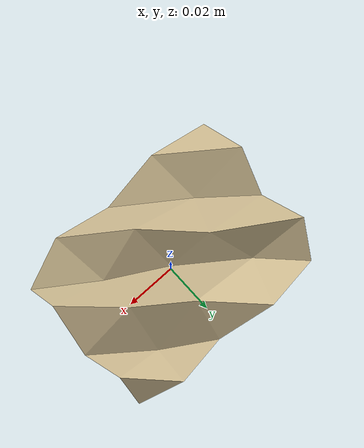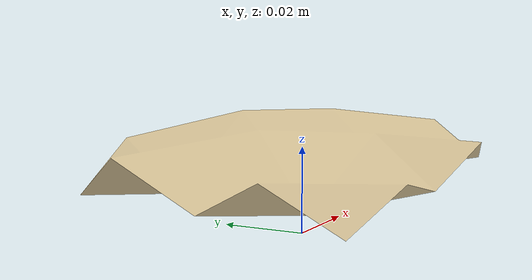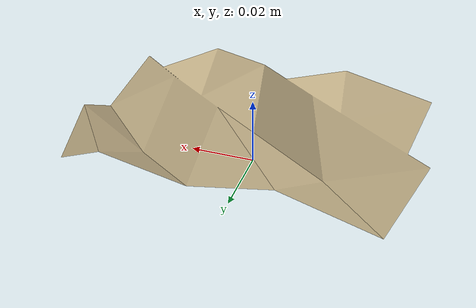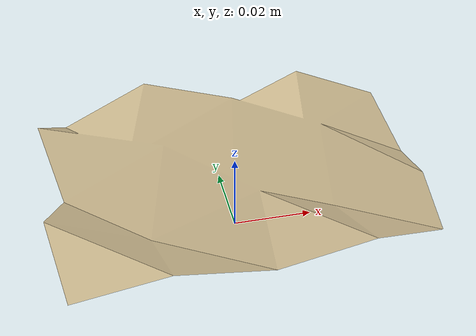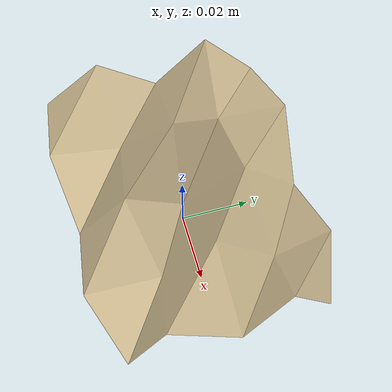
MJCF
<mujoco model="crumpled_paper">
  <asset>
    <texture name="paper_fiber" type="2d" builtin="checker" width="128" height="128" rgb1="0.84 0.79 0.68" rgb2="0.91 0.87 0.77" />
    <material name="paper_collision_invisible" rgba="0.86 0.80 0.68 0" specular="0.0" shininess="0.0" />
    <material name="paper_base" texture="paper_fiber" rgba="0.90 0.86 0.76 1" specular="0.0" shininess="0.0" />
    <material name="paper_light" rgba="0.96 0.93 0.84 1" specular="0.0" shininess="0.0" />
    <material name="paper_shadow" rgba="0.68 0.61 0.49 1" specular="0.0" shininess="0.0" />
    <material name="paper_edge" rgba="0.76 0.69 0.56 1" specular="0.0" shininess="0.0" />
    <mesh
      name="wrinkled_sheet"
      vertex="
        -0.044 -0.031 0.011  -0.021 -0.034 0.018   0.003 -0.031 0.012   0.025 -0.034 0.020   0.044 -0.027 0.013
        -0.047 -0.014 0.021  -0.023 -0.013 0.010   0.002 -0.017 0.024   0.022 -0.012 0.012   0.042 -0.016 0.022
        -0.042  0.003 0.012  -0.017  0.002 0.026   0.000  0.000 0.009   0.022  0.003 0.026   0.045  0.004 0.013
        -0.046  0.020 0.023  -0.024  0.018 0.012   0.003  0.017 0.027   0.024  0.020 0.011   0.041  0.019 0.022
        -0.039  0.033 0.013  -0.017  0.036 0.022   0.005  0.032 0.014   0.025  0.035 0.021   0.042  0.030 0.012
      "
      texcoord="
        0.00 0.00  0.25 0.00  0.50 0.00  0.75 0.00  1.00 0.00
        0.00 0.25  0.25 0.25  0.50 0.25  0.75 0.25  1.00 0.25
        0.00 0.50  0.25 0.50  0.50 0.50  0.75 0.50  1.00 0.50
        0.00 0.75  0.25 0.75  0.50 0.75  0.75 0.75  1.00 0.75
        0.00 1.00  0.25 1.00  0.50 1.00  0.75 1.00  1.00 1.00
      "
      face="
        0 1 5   1 6 5   1 2 6   2 7 6   2 3 7   3 8 7   3 4 8   4 9 8
        5 6 10  6 11 10  6 7 11  7 12 11  7 8 12  8 13 12  8 9 13  9 14 13
        10 11 15  11 16 15  11 12 16  12 17 16  12 13 17  13 18 17  13 14 18  14 19 18
        15 16 20  16 21 20  16 17 21  17 22 21  17 18 22  18 23 22  18 19 23  19 24 23
      "
    />
  </asset>
  <worldbody>
    <body>
      <body name="object">
        <geom name="paper_cushion_collision" type="ellipsoid" pos="0 0 0.016" size="0.044 0.031 0.012" material="paper_collision_invisible" group="0" friction="1.4 0.45 0.1" solref="0.025 1" solimp="0.80 0.95 0.002" />

        <geom name="wrinkled_sheet_visual" type="mesh" mesh="wrinkled_sheet" material="paper_base" group="1" contype="0" conaffinity="0" />
      </body>
      <site rgba="0 0 0 0" size="0.005" pos="0 0 -0.004" name="bottom_site" />
      <site rgba="0 0 0 0" size="0.005" pos="0 0 0.042" name="top_site" />
      <site rgba="0 0 0 0" size="0.046" pos="0.046 0.046 0" name="horizontal_radius_site" />
    </body>
  </worldbody>
</mujoco>
